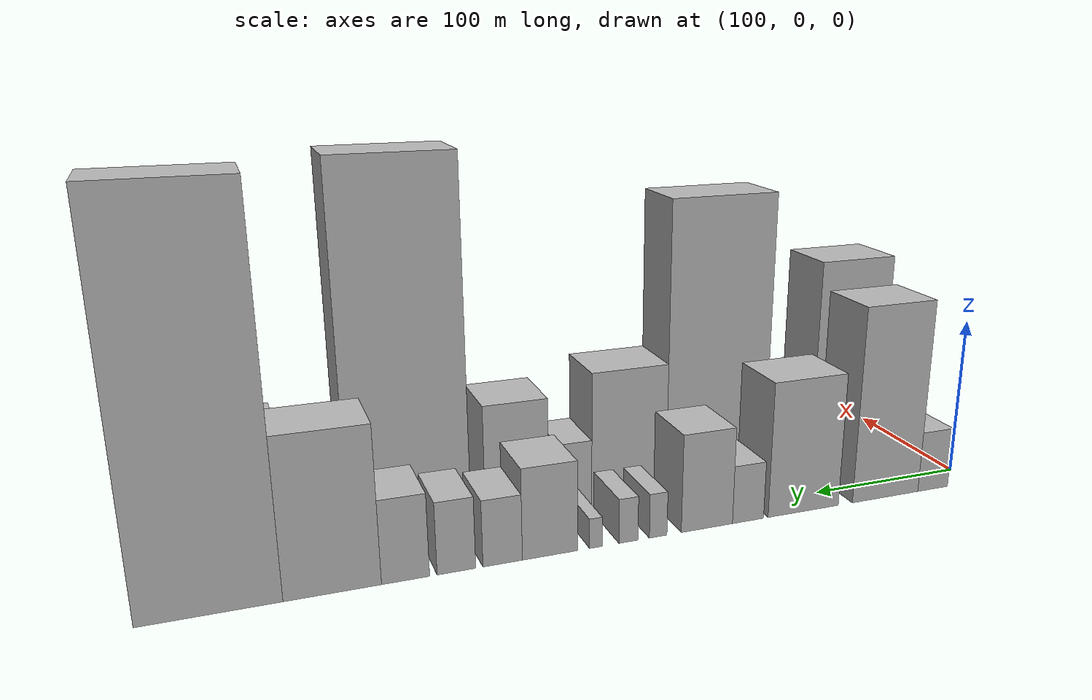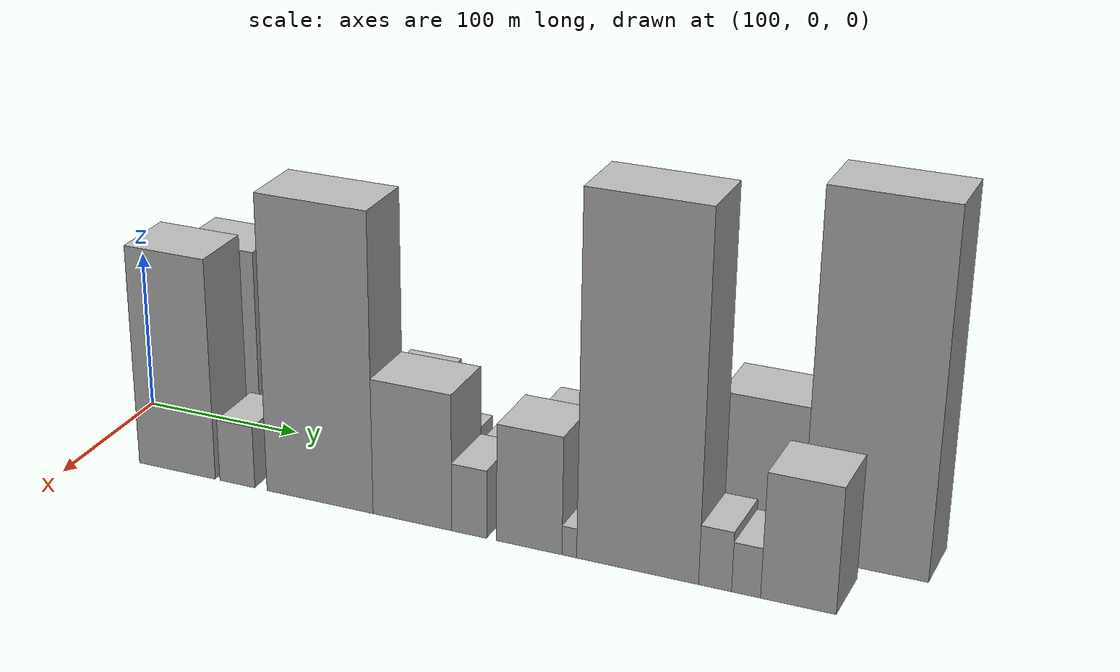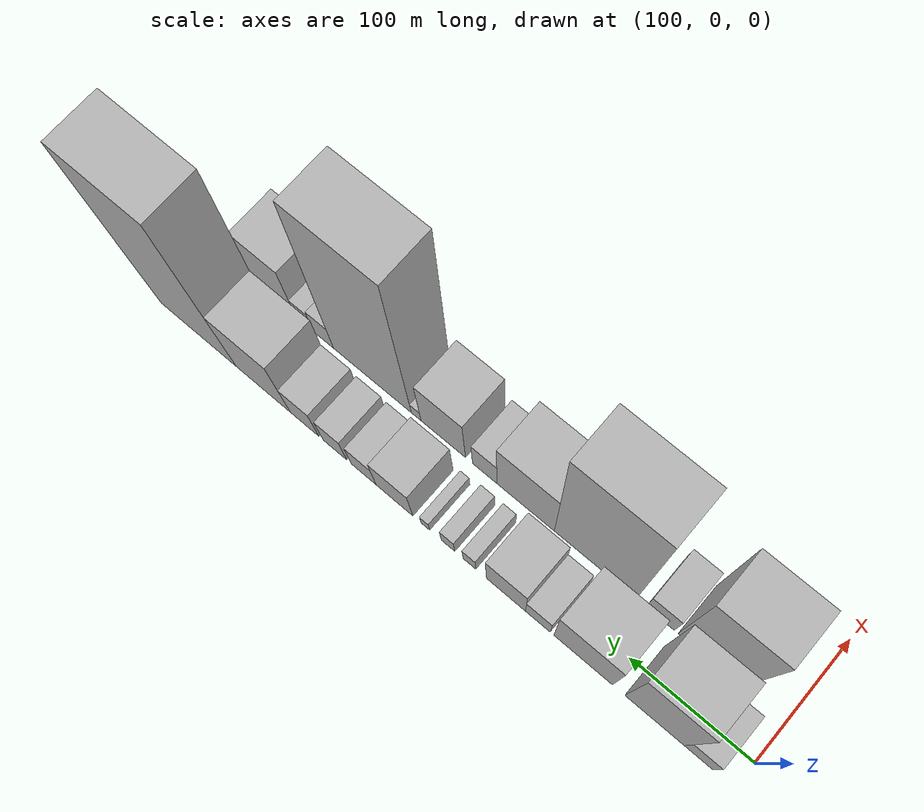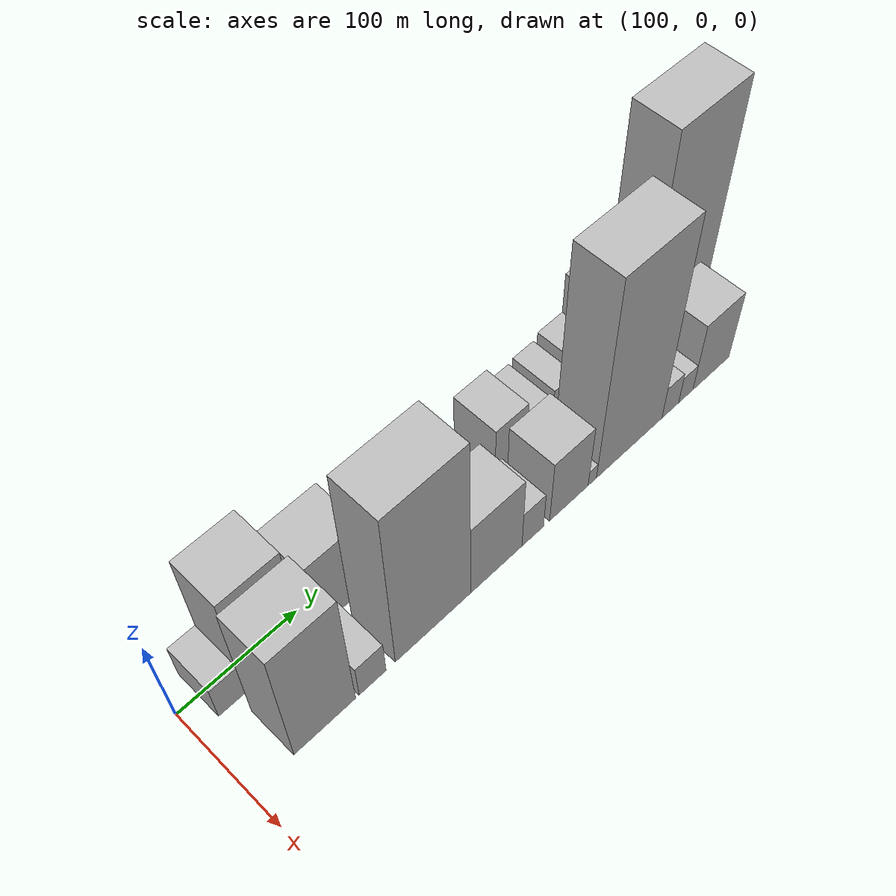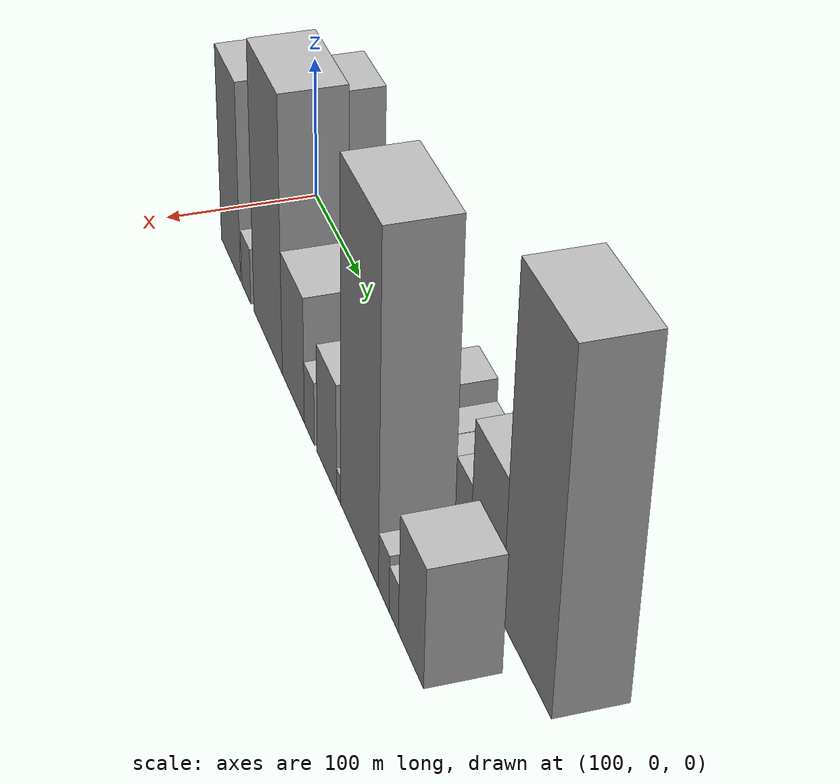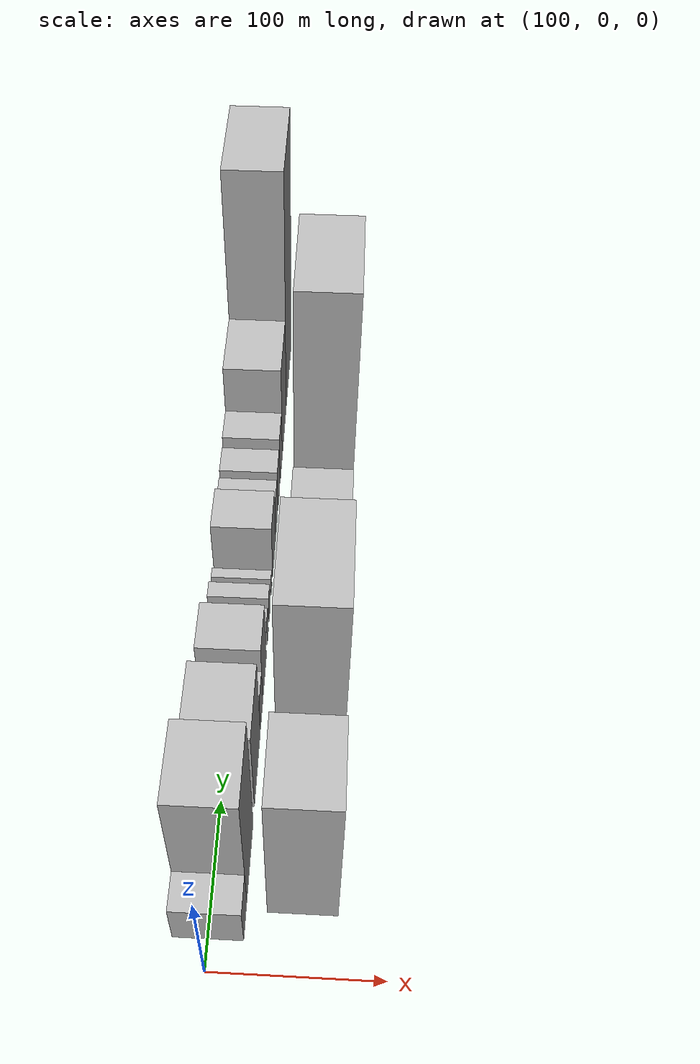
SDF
<sdf version="1.6">
 <world name="default">
  <model name="building_10">
   <static>1</static>
   <pose>100.0000 29.0621 0 0.000000 0.000000 0.000000</pose>
   <link name="link">
    <pose>0 0 19.50 0 0 0</pose>
    <collision name="collision"><geometry><box><size>40.0000 22.1886 39.0000</size></box></geometry></collision>
    <visual name="visual">
     <cast_shadows>0</cast_shadows>
     <geometry><box><size>40.0000 22.1886 39.0000</size></box></geometry>
     <material>
      <script>
       <uri>model://HANNAS_wall/materials/scripts</uri>
       <uri>model://HANNAS_wall/materials/textures</uri>
       <name>vrc/HANNAS_wall</name>
      </script>
     </material>
    </visual>
   </link>
  </model>
  <model name="building_11">
   <static>1</static>
   <pose>100.0000 63.8372 0 0.000000 0.000000 0.000000</pose>
   <link name="link">
    <pose>0 0 61.50 0 0 0</pose>
    <collision name="collision"><geometry><box><size>40.0000 47.3616 123.0000</size></box></geometry></collision>
    <visual name="visual">
     <cast_shadows>0</cast_shadows>
     <geometry><box><size>40.0000 47.3616 123.0000</size></box></geometry>
     <material>
      <script>
       <uri>model://HANNAS_wall/materials/scripts</uri>
       <uri>model://HANNAS_wall/materials/textures</uri>
       <name>vrc/HANNAS_wall</name>
      </script>
     </material>
    </visual>
   </link>
  </model>
  <model name="building_12">
   <static>1</static>
   <pose>100.0000 121.5338 0 0.000000 0.000000 0.000000</pose>
   <link name="link">
    <pose>0 0 42.00 0 0 0</pose>
    <collision name="collision"><geometry><box><size>40.0000 48.0315 84.0000</size></box></geometry></collision>
    <visual name="visual">
     <cast_shadows>0</cast_shadows>
     <geometry><box><size>40.0000 48.0315 84.0000</size></box></geometry>
     <material>
      <script>
       <uri>model://HANNAS_wall/materials/scripts</uri>
       <uri>model://HANNAS_wall/materials/textures</uri>
       <name>vrc/HANNAS_wall</name>
      </script>
     </material>
    </visual>
   </link>
  </model>
  <model name="building_13">
   <static>1</static>
   <pose>100.0000 158.7910 0 0.000000 0.000000 0.000000</pose>
   <link name="link">
    <pose>0 0 18.00 0 0 0</pose>
    <collision name="collision"><geometry><box><size>40.0000 20.4830 36.0000</size></box></geometry></collision>
    <visual name="visual">
     <cast_shadows>0</cast_shadows>
     <geometry><box><size>40.0000 20.4830 36.0000</size></box></geometry>
     <material>
      <script>
       <uri>model://HANNAS_wall/materials/scripts</uri>
       <uri>model://HANNAS_wall/materials/textures</uri>
       <name>vrc/HANNAS_wall</name>
      </script>
     </material>
    </visual>
   </link>
  </model>
  <model name="building_14">
   <static>1</static>
   <pose>100.0000 185.4451 0 0.000000 0.000000 0.000000</pose>
   <link name="link">
    <pose>0 0 30.00 0 0 0</pose>
    <collision name="collision"><geometry><box><size>40.0000 32.8251 60.0000</size></box></geometry></collision>
    <visual name="visual">
     <cast_shadows>0</cast_shadows>
     <geometry><box><size>40.0000 32.8251 60.0000</size></box></geometry>
     <material>
      <script>
       <uri>model://HANNAS_wall/materials/scripts</uri>
       <uri>model://HANNAS_wall/materials/textures</uri>
       <name>vrc/HANNAS_wall</name>
      </script>
     </material>
    </visual>
   </link>
  </model>
  <model name="building_15">
   <static>1</static>
   <pose>100.0000 216.3029 0 0.000000 0.000000 0.000000</pose>
   <link name="link">
    <pose>0 0 13.50 0 0 0</pose>
    <collision name="collision"><geometry><box><size>40.0000 10.8905 27.0000</size></box></geometry></collision>
    <visual name="visual">
     <cast_shadows>0</cast_shadows>
     <geometry><box><size>40.0000 10.8905 27.0000</size></box></geometry>
     <material>
      <script>
       <uri>model://HANNAS_wall/materials/scripts</uri>
       <uri>model://HANNAS_wall/materials/textures</uri>
       <name>vrc/HANNAS_wall</name>
      </script>
     </material>
    </visual>
   </link>
  </model>
  <model name="building_16">
   <static>1</static>
   <pose>100.0000 234.5699 0 0.000000 0.000000 0.000000</pose>
   <link name="link">
    <pose>0 0 13.50 0 0 0</pose>
    <collision name="collision"><geometry><box><size>40.0000 11.6433 27.0000</size></box></geometry></collision>
    <visual name="visual">
     <cast_shadows>0</cast_shadows>
     <geometry><box><size>40.0000 11.6433 27.0000</size></box></geometry>
     <material>
      <script>
       <uri>model://HANNAS_wall/materials/scripts</uri>
       <uri>model://HANNAS_wall/materials/textures</uri>
       <name>vrc/HANNAS_wall</name>
      </script>
     </material>
    </visual>
   </link>
  </model>
  <model name="building_17">
   <static>1</static>
   <pose>100.0000 254.1736 0 0.000000 0.000000 0.000000</pose>
   <link name="link">
    <pose>0 0 9.00 0 0 0</pose>
    <collision name="collision"><geometry><box><size>40.0000 7.5641 18.0000</size></box></geometry></collision>
    <visual name="visual">
     <cast_shadows>0</cast_shadows>
     <geometry><box><size>40.0000 7.5641 18.0000</size></box></geometry>
     <material>
      <script>
       <uri>model://HANNAS_wall/materials/scripts</uri>
       <uri>model://HANNAS_wall/materials/textures</uri>
       <name>vrc/HANNAS_wall</name>
      </script>
     </material>
    </visual>
   </link>
  </model>
  <model name="building_18">
   <static>1</static>
   <pose>100.0000 280.9609 0 0.000000 0.000000 0.000000</pose>
   <link name="link">
    <pose>0 0 27.00 0 0 0</pose>
    <collision name="collision"><geometry><box><size>40.0000 32.0106 54.0000</size></box></geometry></collision>
    <visual name="visual">
     <cast_shadows>0</cast_shadows>
     <geometry><box><size>40.0000 32.0106 54.0000</size></box></geometry>
     <material>
      <script>
       <uri>model://HANNAS_wall/materials/scripts</uri>
       <uri>model://HANNAS_wall/materials/textures</uri>
       <name>vrc/HANNAS_wall</name>
      </script>
     </material>
    </visual>
   </link>
  </model>
  <model name="building_19">
   <static>1</static>
   <pose>100.0000 308.0544 0 0.000000 0.000000 0.000000</pose>
   <link name="link">
    <pose>0 0 19.50 0 0 0</pose>
    <collision name="collision"><geometry><box><size>40.0000 22.1763 39.0000</size></box></geometry></collision>
    <visual name="visual">
     <cast_shadows>0</cast_shadows>
     <geometry><box><size>40.0000 22.1763 39.0000</size></box></geometry>
     <material>
      <script>
       <uri>model://HANNAS_wall/materials/scripts</uri>
       <uri>model://HANNAS_wall/materials/textures</uri>
       <name>vrc/HANNAS_wall</name>
      </script>
     </material>
    </visual>
   </link>
  </model>
  <model name="building_20">
   <static>1</static>
   <pose>100.0000 333.6877 0 0.000000 0.000000 0.000000</pose>
   <link name="link">
    <pose>0 0 21.00 0 0 0</pose>
    <collision name="collision"><geometry><box><size>40.0000 21.0903 42.0000</size></box></geometry></collision>
    <visual name="visual">
     <cast_shadows>0</cast_shadows>
     <geometry><box><size>40.0000 21.0903 42.0000</size></box></geometry>
     <material>
      <script>
       <uri>model://HANNAS_wall/materials/scripts</uri>
       <uri>model://HANNAS_wall/materials/textures</uri>
       <name>vrc/HANNAS_wall</name>
      </script>
     </material>
    </visual>
   </link>
  </model>
  <model name="building_21">
   <static>1</static>
   <pose>100.0000 360.9736 0 0.000000 0.000000 0.000000</pose>
   <link name="link">
    <pose>0 0 24.00 0 0 0</pose>
    <collision name="collision"><geometry><box><size>40.0000 25.4815 48.0000</size></box></geometry></collision>
    <visual name="visual">
     <cast_shadows>0</cast_shadows>
     <geometry><box><size>40.0000 25.4815 48.0000</size></box></geometry>
     <material>
      <script>
       <uri>model://HANNAS_wall/materials/scripts</uri>
       <uri>model://HANNAS_wall/materials/textures</uri>
       <name>vrc/HANNAS_wall</name>
      </script>
     </material>
    </visual>
   </link>
  </model>
  <model name="building_22">
   <static>1</static>
   <pose>100.0000 398.6728 0 0.000000 0.000000 0.000000</pose>
   <link name="link">
    <pose>0 0 45.00 0 0 0</pose>
    <collision name="collision"><geometry><box><size>40.0000 49.9169 90.0000</size></box></geometry></collision>
    <visual name="visual">
     <cast_shadows>0</cast_shadows>
     <geometry><box><size>40.0000 49.9169 90.0000</size></box></geometry>
     <material>
      <script>
       <uri>model://HANNAS_wall/materials/scripts</uri>
       <uri>model://HANNAS_wall/materials/textures</uri>
       <name>vrc/HANNAS_wall</name>
      </script>
     </material>
    </visual>
   </link>
  </model>
  <model name="building_23">
   <static>1</static>
   <pose>100.0000 458.9811 0 0.000000 0.000000 0.000000</pose>
   <link name="link">
    <pose>0 0 108.00 0 0 0</pose>
    <collision name="collision"><geometry><box><size>40.0000 70.6996 216.0000</size></box></geometry></collision>
    <visual name="visual">
     <cast_shadows>0</cast_shadows>
     <geometry><box><size>40.0000 70.6996 216.0000</size></box></geometry>
     <material>
      <script>
       <uri>model://HANNAS_wall/materials/scripts</uri>
       <uri>model://HANNAS_wall/materials/textures</uri>
       <name>vrc/HANNAS_wall</name>
      </script>
     </material>
    </visual>
   </link>
  </model>
  <model name="building_38">
   <static>1</static>
   <pose>152.0000 60.2336 0 0.000000 0.000000 0.000000</pose>
   <link name="link">
    <pose>0 0 69.00 0 0 0</pose>
    <collision name="collision"><geometry><box><size>40.0000 51.3134 138.0000</size></box></geometry></collision>
    <visual name="visual">
     <cast_shadows>0</cast_shadows>
     <geometry><box><size>40.0000 51.3134 138.0000</size></box></geometry>
     <material>
      <script>
       <uri>model://HANNAS_wall/materials/scripts</uri>
       <uri>model://HANNAS_wall/materials/textures</uri>
       <name>vrc/HANNAS_wall</name>
      </script>
     </material>
    </visual>
   </link>
  </model>
  <model name="building_39">
   <static>1</static>
   <pose>152.0000 100.4881 0 0.000000 0.000000 0.000000</pose>
   <link name="link">
    <pose>0 0 19.50 0 0 0</pose>
    <collision name="collision"><geometry><box><size>40.0000 23.1955 39.0000</size></box></geometry></collision>
    <visual name="visual">
     <cast_shadows>0</cast_shadows>
     <geometry><box><size>40.0000 23.1955 39.0000</size></box></geometry>
     <material>
      <script>
       <uri>model://HANNAS_wall/materials/scripts</uri>
       <uri>model://HANNAS_wall/materials/textures</uri>
       <name>vrc/HANNAS_wall</name>
      </script>
     </material>
    </visual>
   </link>
  </model>
  <model name="building_40">
   <static>1</static>
   <pose>152.0000 154.2061 0 0.000000 0.000000 0.000000</pose>
   <link name="link">
    <pose>0 0 91.50 0 0 0</pose>
    <collision name="collision"><geometry><box><size>40.0000 68.2406 183.0000</size></box></geometry></collision>
    <visual name="visual">
     <cast_shadows>0</cast_shadows>
     <geometry><box><size>40.0000 68.2406 183.0000</size></box></geometry>
     <material>
      <script>
       <uri>model://HANNAS_wall/materials/scripts</uri>
       <uri>model://HANNAS_wall/materials/textures</uri>
       <name>vrc/HANNAS_wall</name>
      </script>
     </material>
    </visual>
   </link>
  </model>
  <model name="building_41">
   <static>1</static>
   <pose>152.0000 212.7995 0 0.000000 0.000000 0.000000</pose>
   <link name="link">
    <pose>0 0 42.00 0 0 0</pose>
    <collision name="collision"><geometry><box><size>40.0000 48.9462 84.0000</size></box></geometry></collision>
    <visual name="visual">
     <cast_shadows>0</cast_shadows>
     <geometry><box><size>40.0000 48.9462 84.0000</size></box></geometry>
     <material>
      <script>
       <uri>model://HANNAS_wall/materials/scripts</uri>
       <uri>model://HANNAS_wall/materials/textures</uri>
       <name>vrc/HANNAS_wall</name>
      </script>
     </material>
    </visual>
   </link>
  </model>
  <model name="building_42">
   <static>1</static>
   <pose>152.0000 247.8953 0 0.000000 0.000000 0.000000</pose>
   <link name="link">
    <pose>0 0 21.00 0 0 0</pose>
    <collision name="collision"><geometry><box><size>40.0000 21.2454 42.0000</size></box></geometry></collision>
    <visual name="visual">
     <cast_shadows>0</cast_shadows>
     <geometry><box><size>40.0000 21.2454 42.0000</size></box></geometry>
     <material>
      <script>
       <uri>model://HANNAS_wall/materials/scripts</uri>
       <uri>model://HANNAS_wall/materials/textures</uri>
       <name>vrc/HANNAS_wall</name>
      </script>
     </material>
    </visual>
   </link>
  </model>
  <model name="building_43">
   <static>1</static>
   <pose>152.0000 284.0366 0 0.000000 0.000000 0.000000</pose>
   <link name="link">
    <pose>0 0 36.00 0 0 0</pose>
    <collision name="collision"><geometry><box><size>40.0000 39.0371 72.0000</size></box></geometry></collision>
    <visual name="visual">
     <cast_shadows>0</cast_shadows>
     <geometry><box><size>40.0000 39.0371 72.0000</size></box></geometry>
     <material>
      <script>
       <uri>model://HANNAS_wall/materials/scripts</uri>
       <uri>model://HANNAS_wall/materials/textures</uri>
       <name>vrc/HANNAS_wall</name>
      </script>
     </material>
    </visual>
   </link>
  </model>
  <model name="building_44">
   <static>1</static>
   <pose>152.0000 307.8792 0 0.000000 0.000000 0.000000</pose>
   <link name="link">
    <pose>0 0 9.00 0 0 0</pose>
    <collision name="collision"><geometry><box><size>40.0000 8.6481 18.0000</size></box></geometry></collision>
    <visual name="visual">
     <cast_shadows>0</cast_shadows>
     <geometry><box><size>40.0000 8.6481 18.0000</size></box></geometry>
     <material>
      <script>
       <uri>model://HANNAS_wall/materials/scripts</uri>
       <uri>model://HANNAS_wall/materials/textures</uri>
       <name>vrc/HANNAS_wall</name>
      </script>
     </material>
    </visual>
   </link>
  </model>
  <model name="building_45">
   <static>1</static>
   <pose>152.0000 347.3015 0 0.000000 0.000000 0.000000</pose>
   <link name="link">
    <pose>0 0 108.00 0 0 0</pose>
    <collision name="collision"><geometry><box><size>40.0000 70.1964 216.0000</size></box></geometry></collision>
    <visual name="visual">
     <cast_shadows>0</cast_shadows>
     <geometry><box><size>40.0000 70.1964 216.0000</size></box></geometry>
     <material>
      <script>
       <uri>model://HANNAS_wall/materials/scripts</uri>
       <uri>model://HANNAS_wall/materials/textures</uri>
       <name>vrc/HANNAS_wall</name>
      </script>
     </material>
    </visual>
   </link>
  </model>
  <model name="building_46">
   <static>1</static>
   <pose>152.0000 391.6480 0 0.000000 0.000000 0.000000</pose>
   <link name="link">
    <pose>0 0 18.00 0 0 0</pose>
    <collision name="collision"><geometry><box><size>40.0000 18.4966 36.0000</size></box></geometry></collision>
    <visual name="visual">
     <cast_shadows>0</cast_shadows>
     <geometry><box><size>40.0000 18.4966 36.0000</size></box></geometry>
     <material>
      <script>
       <uri>model://HANNAS_wall/materials/scripts</uri>
       <uri>model://HANNAS_wall/materials/textures</uri>
       <name>vrc/HANNAS_wall</name>
      </script>
     </material>
    </visual>
   </link>
  </model>
  <model name="building_47">
   <static>1</static>
   <pose>152.0000 408.9299 0 0.000000 0.000000 0.000000</pose>
   <link name="link">
    <pose>0 0 15.00 0 0 0</pose>
    <collision name="collision"><geometry><box><size>40.0000 16.0673 30.0000</size></box></geometry></collision>
    <visual name="visual">
     <cast_shadows>0</cast_shadows>
     <geometry><box><size>40.0000 16.0673 30.0000</size></box></geometry>
     <material>
      <script>
       <uri>model://HANNAS_wall/materials/scripts</uri>
       <uri>model://HANNAS_wall/materials/textures</uri>
       <name>vrc/HANNAS_wall</name>
      </script>
     </material>
    </visual>
   </link>
  </model>
  <model name="building_48">
   <static>1</static>
   <pose>152.0000 437.6407 0 0.000000 0.000000 0.000000</pose>
   <link name="link">
    <pose>0 0 37.50 0 0 0</pose>
    <collision name="collision"><geometry><box><size>40.0000 41.3544 75.0000</size></box></geometry></collision>
    <visual name="visual">
     <cast_shadows>0</cast_shadows>
     <geometry><box><size>40.0000 41.3544 75.0000</size></box></geometry>
     <material>
      <script>
       <uri>model://HANNAS_wall/materials/scripts</uri>
       <uri>model://HANNAS_wall/materials/textures</uri>
       <name>vrc/HANNAS_wall</name>
      </script>
     </material>
    </visual>
   </link>
  </model>
 </world>
</sdf>
